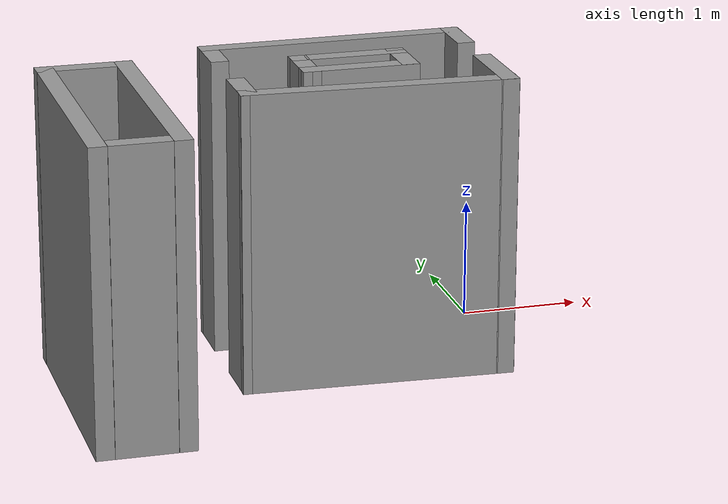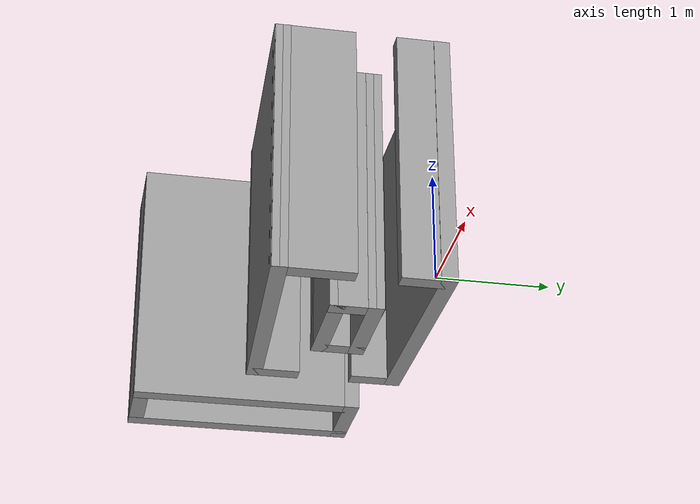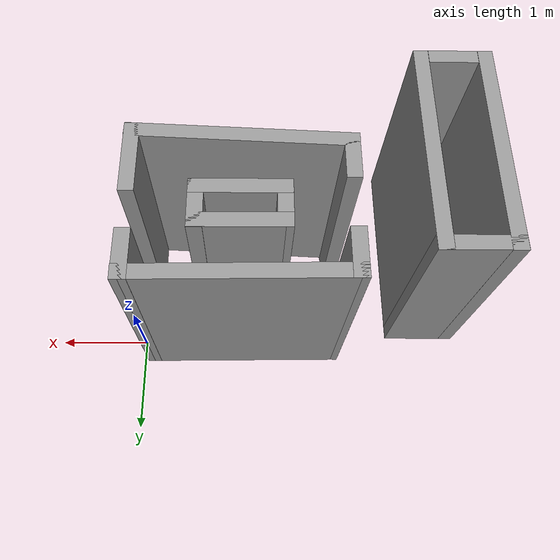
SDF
<?xml version='1.0'?>
<sdf version='1.6'>
  <model name='obstacle_test'>
    <pose frame=''>-1.85086 -1.06357 0 0 -0 0</pose>
    <link name='Wall_11'>
      <collision name='Wall_11_Collision'>
        <geometry>
          <box>
            <size>0.5 0.15 2.5</size>
          </box>
        </geometry>
        <pose frame=''>0 0 1.25 0 -0 0</pose>
      </collision>
      <visual name='Wall_11_Visual'>
        <pose frame=''>0 0 1.25 0 -0 0</pose>
        <geometry>
          <box>
            <size>0.5 0.15 2.5</size>
          </box>
        </geometry>
        <material>
          <script>
            <uri>file://media/materials/scripts/gazebo.material</uri>
            <name>Gazebo/Grey</name>
          </script>
          <ambient>1 1 1 1</ambient>
        </material>
        <meta>
          <layer>0</layer>
        </meta>
      </visual>
      <pose frame=''>-0.367425 0.994988 0 0 -0 -1.5708</pose>
    </link>
    <link name='Wall_15'>
      <collision name='Wall_15_Collision'>
        <geometry>
          <box>
            <size>0.5 0.15 2.5</size>
          </box>
        </geometry>
        <pose frame=''>0 0 1.25 0 -0 0</pose>
      </collision>
      <visual name='Wall_15_Visual'>
        <pose frame=''>0 0 1.25 0 -0 0</pose>
        <geometry>
          <box>
            <size>0.5 0.15 2.5</size>
          </box>
        </geometry>
        <material>
          <script>
            <uri>file://media/materials/scripts/gazebo.material</uri>
            <name>Gazebo/Grey</name>
          </script>
          <ambient>1 1 1 1</ambient>
        </material>
        <meta>
          <layer>0</layer>
        </meta>
      </visual>
      <pose frame=''>-0.365494 -0.00889 0 0 -0 -1.5708</pose>
    </link>
    <link name='Wall_17'>
      <collision name='Wall_17_Collision'>
        <geometry>
          <box>
            <size>0.5 0.15 2.5</size>
          </box>
        </geometry>
        <pose frame=''>0 0 1.25 0 -0 0</pose>
      </collision>
      <visual name='Wall_17_Visual'>
        <pose frame=''>0 0 1.25 0 -0 0</pose>
        <geometry>
          <box>
            <size>0.5 0.15 2.5</size>
          </box>
        </geometry>
        <material>
          <script>
            <uri>file://media/materials/scripts/gazebo.material</uri>
            <name>Gazebo/Grey</name>
          </script>
          <ambient>1 1 1 1</ambient>
        </material>
        <meta>
          <layer>0</layer>
        </meta>
      </visual>
      <pose frame=''>-1.4483 -1.20103 0 0 -0 0</pose>
    </link>
    <link name='Wall_2'>
      <collision name='Wall_2_Collision'>
        <geometry>
          <box>
            <size>2.25 0.15 2.5</size>
          </box>
        </geometry>
        <pose frame=''>0 0 1.25 0 -0 0</pose>
      </collision>
      <visual name='Wall_2_Visual'>
        <pose frame=''>0 0 1.25 0 -0 0</pose>
        <geometry>
          <box>
            <size>2.25 0.15 2.5</size>
          </box>
        </geometry>
        <material>
          <script>
            <uri>file://media/materials/scripts/gazebo.material</uri>
            <name>Gazebo/Grey</name>
          </script>
          <ambient>1 1 1 1</ambient>
        </material>
        <meta>
          <layer>0</layer>
        </meta>
      </visual>
      <pose frame=''>-1.77465 -0.15125 0 0 -0 1.5708</pose>
    </link>
    <link name='Wall_21'>
      <collision name='Wall_21_Collision'>
        <geometry>
          <box>
            <size>2.25328 0.15 2.5</size>
          </box>
        </geometry>
        <pose frame=''>0 0 1.25 0 -0 0</pose>
      </collision>
      <visual name='Wall_21_Visual'>
        <pose frame=''>0 0 1.25 0 -0 0</pose>
        <geometry>
          <box>
            <size>2.25328 0.15 2.5</size>
          </box>
        </geometry>
        <material>
          <script>
            <uri>file://media/materials/scripts/gazebo.material</uri>
            <name>Gazebo/Grey</name>
          </script>
          <ambient>1 1 1 1</ambient>
        </material>
        <meta>
          <layer>0</layer>
        </meta>
      </visual>
      <pose frame=''>0.684102 1.18526 0 0 -0 0.014522</pose>
    </link>
    <link name='Wall_23'>
      <collision name='Wall_23_Collision'>
        <geometry>
          <box>
            <size>2.25856 0.15 2.5</size>
          </box>
        </geometry>
        <pose frame=''>0 0 1.25 0 -0 0</pose>
      </collision>
      <visual name='Wall_23_Visual'>
        <pose frame=''>0 0 1.25 0 -0 0</pose>
        <geometry>
          <box>
            <size>2.25856 0.15 2.5</size>
          </box>
        </geometry>
        <material>
          <script>
            <uri>file://media/materials/scripts/gazebo.material</uri>
            <name>Gazebo/Grey</name>
          </script>
          <ambient>1 1 1 1</ambient>
        </material>
        <meta>
          <layer>0</layer>
        </meta>
      </visual>
      <pose frame=''>0.68758 -0.234366 0 0 -0 3.0937</pose>
    </link>
    <link name='Wall_27'>
      <collision name='Wall_27_Collision'>
        <geometry>
          <box>
            <size>0.975572 0.15 2.5</size>
          </box>
        </geometry>
        <pose frame=''>0 0 1.25 0 -0 0</pose>
      </collision>
      <visual name='Wall_27_Visual'>
        <pose frame=''>0 0 1.25 0 -0 0</pose>
        <geometry>
          <box>
            <size>0.975572 0.15 2.5</size>
          </box>
        </geometry>
        <material>
          <script>
            <uri>file://media/materials/scripts/gazebo.material</uri>
            <name>Gazebo/Grey</name>
          </script>
          <ambient>1 1 1 1</ambient>
        </material>
        <meta>
          <layer>0</layer>
        </meta>
      </visual>
      <pose frame=''>0.689055 0.68591 0 0 -0 0.0037</pose>
    </link>
    <link name='Wall_28'>
      <collision name='Wall_28_Collision'>
        <geometry>
          <box>
            <size>0.5 0.15 2.5</size>
          </box>
        </geometry>
        <pose frame=''>0 0 1.25 0 -0 0</pose>
      </collision>
      <visual name='Wall_28_Visual'>
        <pose frame=''>0 0 1.25 0 -0 0</pose>
        <geometry>
          <box>
            <size>0.5 0.15 2.5</size>
          </box>
        </geometry>
        <material>
          <script>
            <uri>file://media/materials/scripts/gazebo.material</uri>
            <name>Gazebo/Grey</name>
          </script>
          <ambient>1 1 1 1</ambient>
        </material>
        <meta>
          <layer>0</layer>
        </meta>
      </visual>
      <pose frame=''>1.10184 0.515492 0 0 -0 -1.5708</pose>
    </link>
    <link name='Wall_29'>
      <collision name='Wall_29_Collision'>
        <geometry>
          <box>
            <size>0.975572 0.15 2.5</size>
          </box>
        </geometry>
        <pose frame=''>0 0 1.25 0 -0 0</pose>
      </collision>
      <visual name='Wall_29_Visual'>
        <pose frame=''>0 0 1.25 0 -0 0</pose>
        <geometry>
          <box>
            <size>0.975572 0.15 2.5</size>
          </box>
        </geometry>
        <material>
          <script>
            <uri>file://media/materials/scripts/gazebo.material</uri>
            <name>Gazebo/Grey</name>
          </script>
          <ambient>1 1 1 1</ambient>
        </material>
        <meta>
          <layer>0</layer>
        </meta>
      </visual>
      <pose frame=''>0.689055 0.33591 0 0 -0 -3.13789</pose>
    </link>
    <link name='Wall_3'>
      <collision name='Wall_3_Collision'>
        <geometry>
          <box>
            <size>0.804689 0.15 2.5</size>
          </box>
        </geometry>
        <pose frame=''>0 0 1.25 0 -0 0</pose>
      </collision>
      <visual name='Wall_3_Visual'>
        <pose frame=''>0 0 1.25 0 -0 0</pose>
        <geometry>
          <box>
            <size>0.804689 0.15 2.5</size>
          </box>
        </geometry>
        <material>
          <script>
            <uri>file://media/materials/scripts/gazebo.material</uri>
            <name>Gazebo/Grey</name>
          </script>
          <ambient>1 1 1 1</ambient>
        </material>
        <meta>
          <layer>0</layer>
        </meta>
      </visual>
      <pose frame=''>-1.44834 0.898502 0 0 -0 0.002398</pose>
    </link>
    <link name='Wall_30'>
      <collision name='Wall_30_Collision'>
        <geometry>
          <box>
            <size>0.5 0.15 2.5</size>
          </box>
        </geometry>
        <pose frame=''>0 0 1.25 0 -0 0</pose>
      </collision>
      <visual name='Wall_30_Visual'>
        <pose frame=''>0 0 1.25 0 -0 0</pose>
        <geometry>
          <box>
            <size>0.5 0.15 2.5</size>
          </box>
        </geometry>
        <material>
          <script>
            <uri>file://media/materials/scripts/gazebo.material</uri>
            <name>Gazebo/Grey</name>
          </script>
          <ambient>1 1 1 1</ambient>
        </material>
        <meta>
          <layer>0</layer>
        </meta>
      </visual>
      <pose frame=''>0.276272 0.509383 0 0 -0 1.5708</pose>
    </link>
    <link name='Wall_33'>
      <collision name='Wall_33_Collision'>
        <geometry>
          <box>
            <size>0.5 0.15 2.5</size>
          </box>
        </geometry>
        <pose frame=''>0 0 1.25 0 -0 0</pose>
      </collision>
      <visual name='Wall_33_Visual'>
        <pose frame=''>0 0 1.25 0 -0 0</pose>
        <geometry>
          <box>
            <size>0.5 0.15 2.5</size>
          </box>
        </geometry>
        <material>
          <script>
            <uri>file://media/materials/scripts/gazebo.material</uri>
            <name>Gazebo/Grey</name>
          </script>
          <ambient>1 1 1 1</ambient>
        </material>
        <meta>
          <layer>0</layer>
        </meta>
      </visual>
      <pose frame=''>1.73257 1.02553 0 0 -0 -1.5708</pose>
    </link>
    <link name='Wall_35'>
      <collision name='Wall_35_Collision'>
        <geometry>
          <box>
            <size>0.75 0.15 2.5</size>
          </box>
        </geometry>
        <pose frame=''>0 0 1.25 0 -0 0</pose>
      </collision>
      <visual name='Wall_35_Visual'>
        <pose frame=''>0 0 1.25 0 -0 0</pose>
        <geometry>
          <box>
            <size>0.75 0.15 2.5</size>
          </box>
        </geometry>
        <material>
          <script>
            <uri>file://media/materials/scripts/gazebo.material</uri>
            <name>Gazebo/Grey</name>
          </script>
          <ambient>1 1 1 1</ambient>
        </material>
        <meta>
          <layer>0</layer>
        </meta>
      </visual>
      <pose frame=''>1.74065 0.018212 0 0 -0 1.5708</pose>
    </link>
    <link name='Wall_4'>
      <collision name='Wall_4_Collision'>
        <geometry>
          <box>
            <size>2.25 0.15 2.5</size>
          </box>
        </geometry>
        <pose frame=''>0 0 1.25 0 -0 0</pose>
      </collision>
      <visual name='Wall_4_Visual'>
        <pose frame=''>0 0 1.25 0 -0 0</pose>
        <geometry>
          <box>
            <size>2.25 0.15 2.5</size>
          </box>
        </geometry>
        <material>
          <script>
            <uri>file://media/materials/scripts/gazebo.material</uri>
            <name>Gazebo/Grey</name>
          </script>
          <ambient>1 1 1 1</ambient>
        </material>
        <meta>
          <layer>0</layer>
        </meta>
      </visual>
      <pose frame=''>-1.12189 -0.151611 0 0 -0 -1.5708</pose>
    </link>
    <static>1</static>
  </model>
</sdf>
